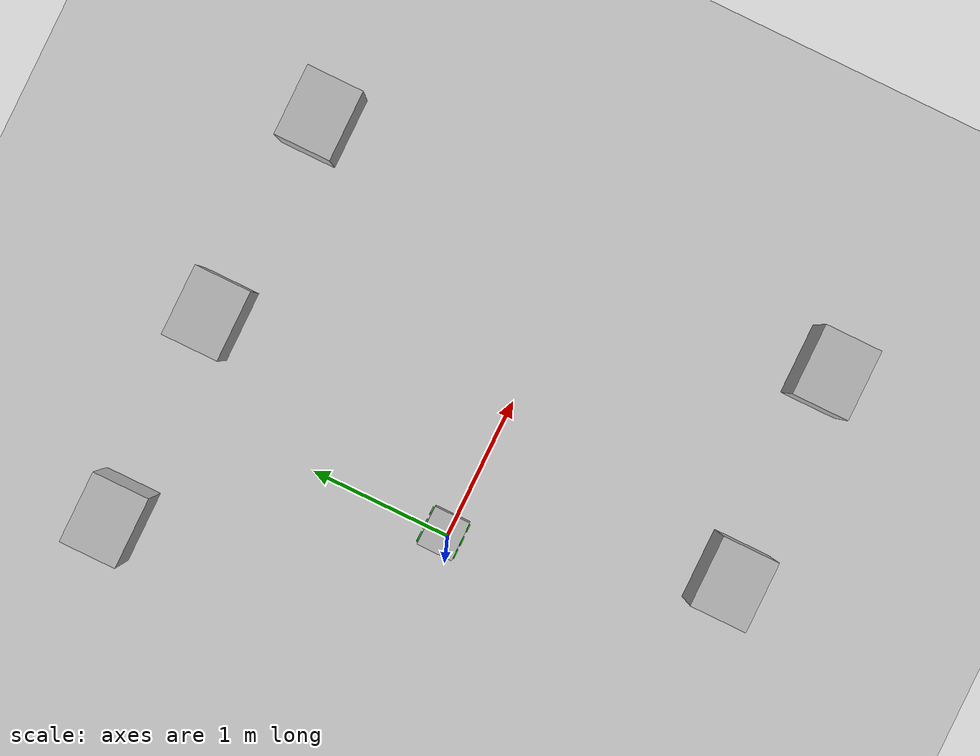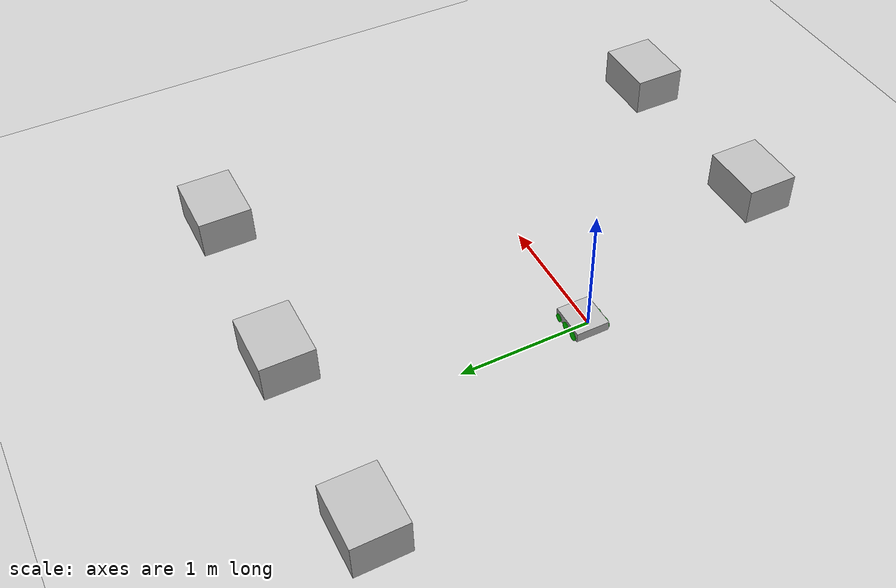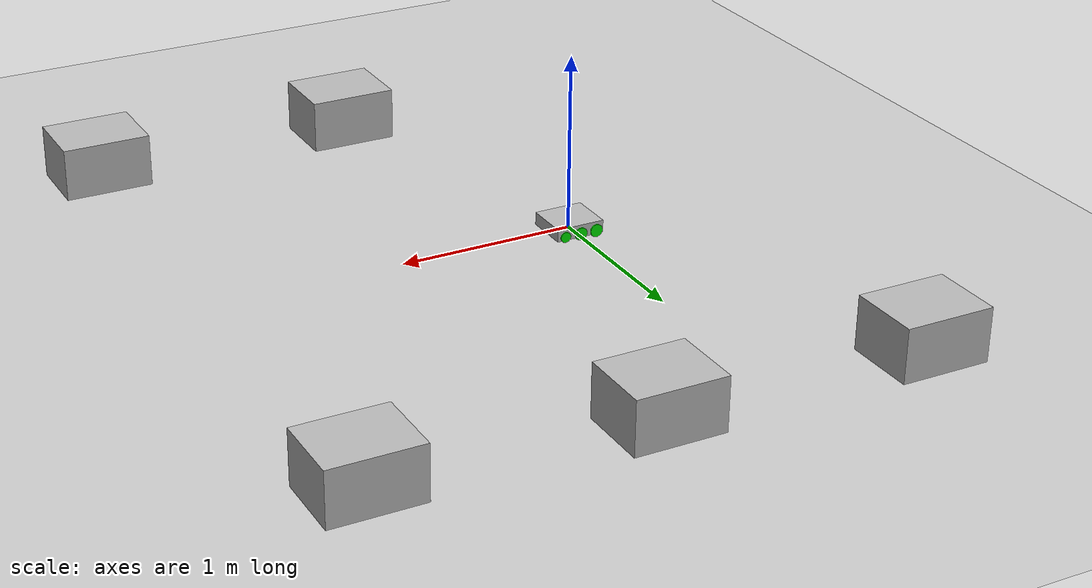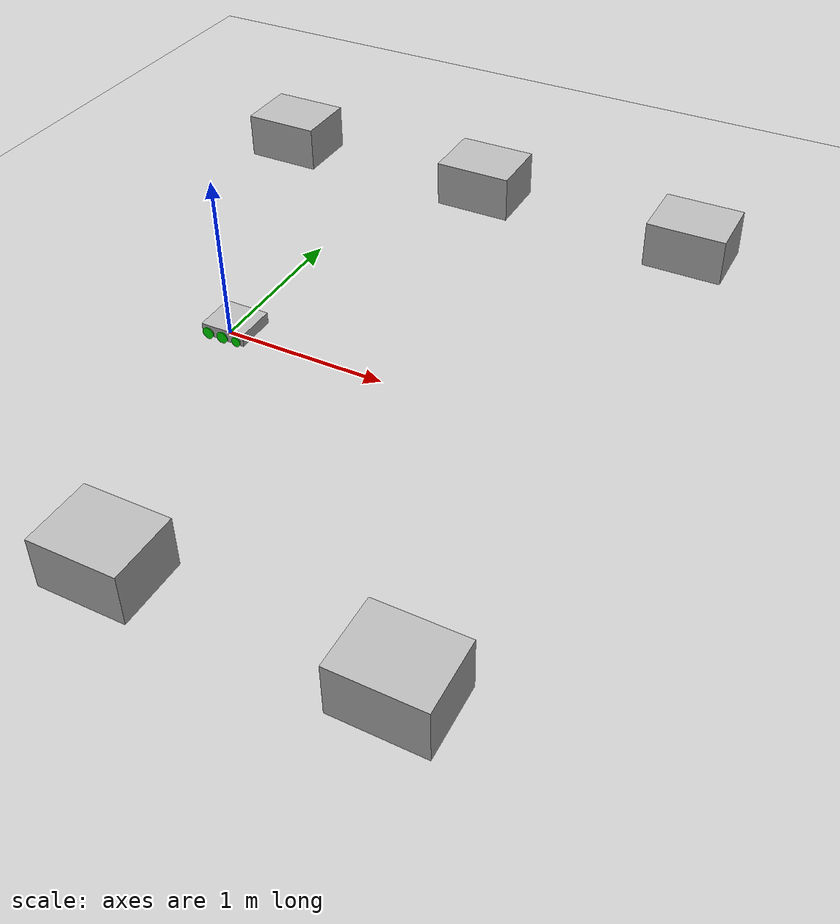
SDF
<sdf version="1.7">
 <world name="default">
  <light name="sun" type="directional">
   <pose>0 0 10 0 -0 0</pose>
   <diffuse>0.8 0.8 0.8 1</diffuse>
   <specular>0.2 0.2 0.2 1</specular>
   <attenuation>
    <range>1000</range>
    <constant>0.9</constant>
    <linear>0.01</linear>
    <quadratic>0.001</quadratic>
   </attenuation>
   <direction>-0.5 0.1 -0.9</direction>
   <spot><inner_angle>0</inner_angle><outer_angle>0</outer_angle><falloff>0</falloff></spot>
  </light>
  <model name="ground_plane">
   <static>1</static>
   <link name="link">
    <collision name="collision">
     <geometry><plane><normal>0 0 1</normal><size>100 100</size></plane></geometry>
     <surface>
      <contact><collide_bitmask>65535</collide_bitmask></contact>
      <friction><ode><mu>100</mu><mu2>50</mu2></ode></friction>
     </surface>
    </collision>
    <visual name="visual">
     <cast_shadows>0</cast_shadows>
     <geometry><plane><normal>0 0 1</normal><size>100 100</size></plane></geometry>
     <material>
      <script><uri>file://media/materials/scripts/gazebo.material</uri><name>Gazebo/Grey</name></script>
     </material>
    </visual>
   </link>
  </model>
  <gravity>0 0 -9.8</gravity>
  <magnetic_field>6e-06 2.3e-05 -4.2e-05</magnetic_field>
  <atmosphere type="adiabatic"/>
  <physics type="ode">
   <max_step_size>0.001</max_step_size>
   <real_time_factor>1</real_time_factor>
   <real_time_update_rate>1000</real_time_update_rate>
  </physics>
  <scene><ambient>0.4 0.4 0.4 1</ambient><background>0.7 0.7 0.7 1</background><shadows>1</shadows></scene>
  <spherical_coordinates>
   <surface_model>EARTH_WGS84</surface_model>
   <latitude_deg>0</latitude_deg>
   <longitude_deg>0</longitude_deg>
   <elevation>0</elevation>
   <heading_deg>0</heading_deg>
  </spherical_coordinates>
  <model name="cardboard_box">
   <pose>2.13729 1.9572 0.149 0 -0 0</pose>
   <link name="link">
    <inertial>
     <mass>2</mass>
     <inertia>
      <ixx>0.0416667</ixx>
      <ixy>0</ixy>
      <ixz>0</ixz>
      <iyy>0.0566667</iyy>
      <iyz>0</iyz>
      <izz>0.0683333</izz>
     </inertia>
    </inertial>
    <collision name="collision">
     <geometry><box><size>0.5 0.4 0.3</size></box></geometry>
     <surface>
      <friction><ode><mu>1</mu><mu2>1</mu2></ode></friction>
      <contact><ode><kp>1e+07</kp><kd>1</kd><min_depth>0.001</min_depth><max_vel>0.1</max_vel></ode></contact>
     </surface>
    </collision>
    <visual name="visual">
     <pose>0 0 -0.15 0 -0 0</pose>
     <geometry>
      <mesh><uri>model://cardboard_box/meshes/cardboard_box.dae</uri><scale>1.25932 1.00745 0.755591</scale></mesh>
     </geometry>
    </visual>
   </link>
  </model>
  <model name="cardboard_box_clone">
   <pose>2.08974 -1.7852 0.149 0 -0 0</pose>
   <link name="link">
    <inertial>
     <mass>2</mass>
     <inertia>
      <ixx>0.0416667</ixx>
      <ixy>0</ixy>
      <ixz>0</ixz>
      <iyy>0.0566667</iyy>
      <iyz>0</iyz>
      <izz>0.0683333</izz>
     </inertia>
    </inertial>
    <collision name="collision">
     <geometry><box><size>0.5 0.4 0.3</size></box></geometry>
     <surface>
      <friction><ode><mu>1</mu><mu2>1</mu2></ode></friction>
      <contact><ode><kp>1e+07</kp><kd>1</kd><min_depth>0.001</min_depth><max_vel>0.1</max_vel></ode></contact>
     </surface>
    </collision>
    <visual name="visual">
     <pose>0 0 -0.15 0 -0 0</pose>
     <geometry>
      <mesh><uri>model://cardboard_box/meshes/cardboard_box.dae</uri><scale>1.25932 1.00745 0.755591</scale></mesh>
     </geometry>
    </visual>
   </link>
  </model>
  <model name="cardboard_box_clone_0">
   <pose>0.571619 -1.78743 0.149 0 -0 0</pose>
   <link name="link">
    <inertial>
     <mass>2</mass>
     <inertia>
      <ixx>0.0416667</ixx>
      <ixy>0</ixy>
      <ixz>0</ixz>
      <iyy>0.0566667</iyy>
      <iyz>0</iyz>
      <izz>0.0683333</izz>
     </inertia>
    </inertial>
    <collision name="collision">
     <geometry><box><size>0.5 0.4 0.3</size></box></geometry>
     <surface>
      <friction><ode><mu>1</mu><mu2>1</mu2></ode></friction>
      <contact><ode><kp>1e+07</kp><kd>1</kd><min_depth>0.001</min_depth><max_vel>0.1</max_vel></ode></contact>
     </surface>
    </collision>
    <visual name="visual">
     <pose>0 0 -0.15 0 -0 0</pose>
     <geometry>
      <mesh><uri>model://cardboard_box/meshes/cardboard_box.dae</uri><scale>1.25932 1.00745 0.755591</scale></mesh>
     </geometry>
    </visual>
   </link>
  </model>
  <model name="cardboard_box_clone_1">
   <pose>0.658976 2.04736 0.149 0 -0 0</pose>
   <link name="link">
    <inertial>
     <mass>2</mass>
     <inertia>
      <ixx>0.0416667</ixx>
      <ixy>0</ixy>
      <ixz>0</ixz>
      <iyy>0.0566667</iyy>
      <iyz>0</iyz>
      <izz>0.0683333</izz>
     </inertia>
    </inertial>
    <collision name="collision">
     <geometry><box><size>0.5 0.4 0.3</size></box></geometry>
     <surface>
      <friction><ode><mu>1</mu><mu2>1</mu2></ode></friction>
      <contact><ode><kp>1e+07</kp><kd>1</kd><min_depth>0.001</min_depth><max_vel>0.1</max_vel></ode></contact>
     </surface>
    </collision>
    <visual name="visual">
     <pose>0 0 -0.15 0 -0 0</pose>
     <geometry>
      <mesh><uri>model://cardboard_box/meshes/cardboard_box.dae</uri><scale>1.25932 1.00745 0.755591</scale></mesh>
     </geometry>
    </visual>
   </link>
  </model>
  <model name="cardboard_box_clone_2">
   <pose>-0.831663 2.05622 0.149 0 -0 0</pose>
   <link name="link">
    <inertial>
     <mass>2</mass>
     <inertia>
      <ixx>0.0416667</ixx>
      <ixy>0</ixy>
      <ixz>0</ixz>
      <iyy>0.0566667</iyy>
      <iyz>0</iyz>
      <izz>0.0683333</izz>
     </inertia>
    </inertial>
    <collision name="collision">
     <geometry><box><size>0.5 0.4 0.3</size></box></geometry>
     <surface>
      <friction><ode><mu>1</mu><mu2>1</mu2></ode></friction>
      <contact><ode><kp>1e+07</kp><kd>1</kd><min_depth>0.001</min_depth><max_vel>0.1</max_vel></ode></contact>
     </surface>
    </collision>
    <visual name="visual">
     <pose>0 0 -0.15 0 -0 0</pose>
     <geometry>
      <mesh><uri>model://cardboard_box/meshes/cardboard_box.dae</uri><scale>1.25932 1.00745 0.755591</scale></mesh>
     </geometry>
    </visual>
   </link>
  </model>
  <model name="six_wheel_robot">
   <static>0</static>
   <plugin name="robot_control" filename="libsix_wheel_robot_drivetrain.so"/>
   <link name="chassis">
    <pose>0 0 0.05 0 -0 0</pose>
    <inertial>
     <mass>1.5</mass>
     <pose>-0.05 0 0 0 -0 0</pose>
     <inertia><ixx>20</ixx><ixy>0</ixy><ixz>0</ixz><iyy>20</iyy><iyz>0</iyz><izz>0.05</izz></inertia>
    </inertial>
    <collision name="collision"><geometry><box><size>0.2794 0.254 0.073</size></box></geometry></collision>
    <visual name="visual"><geometry><box><size>0.2794 0.254 0.073</size></box></geometry></visual>
   </link>
   <link name="left_back_wheel">
    <pose>-0.095 0.135 0.036 -0 1.5707 1.5707</pose>
    <inertial>
     <mass>0.028</mass>
     <inertia><ixx>0.01</ixx><ixy>0</ixy><ixz>0</ixz><iyy>0.01</iyy><iyz>0</iyz><izz>0.001</izz></inertia>
    </inertial>
    <collision name="collision">
     <geometry><cylinder><radius>0.0365125</radius><length>0.00635</length></cylinder></geometry>
    </collision>
    <visual name="visual">
     <geometry><cylinder><radius>0.0365125</radius><length>0.00635</length></cylinder></geometry>
     <material>
      <ambient>0 0.9 0 1</ambient>
      <diffuse>0 0.9 0 1</diffuse>
      <specular>0 0 0 0</specular>
      <emissive>0 0 0 1</emissive>
     </material>
    </visual>
   </link>
   <joint name="left_back_wheel_hinge" type="revolute">
    <pose>0 0 -0.03 0 -0 0</pose>
    <child>left_back_wheel</child>
    <parent>chassis</parent>
    <axis>
     <xyz expressed_in="__model__">0 1 0</xyz>
     <limit><lower>-1e+16</lower><upper>1e+16</upper></limit>
     <dynamics><spring_reference>0</spring_reference><spring_stiffness>0</spring_stiffness></dynamics>
    </axis>
   </joint>
   <link name="left_center_wheel">
    <pose>0 0.135 0.036 -0 1.5707 1.5707</pose>
    <inertial>
     <mass>0.028</mass>
     <inertia><ixx>0.01</ixx><ixy>0</ixy><ixz>0</ixz><iyy>0.01</iyy><iyz>0</iyz><izz>0.001</izz></inertia>
    </inertial>
    <collision name="collision">
     <geometry><cylinder><radius>0.0365125</radius><length>0.00635</length></cylinder></geometry>
    </collision>
    <visual name="visual">
     <geometry><cylinder><radius>0.0365125</radius><length>0.00635</length></cylinder></geometry>
     <material>
      <ambient>0 0.9 0 1</ambient>
      <diffuse>0 0.9 0 1</diffuse>
      <specular>0 0 0 0</specular>
      <emissive>0 0 0 1</emissive>
     </material>
    </visual>
   </link>
   <joint name="left_center_wheel_hinge" type="revolute">
    <pose>0 0 -0.03 0 -0 0</pose>
    <child>left_center_wheel</child>
    <parent>chassis</parent>
    <axis>
     <xyz expressed_in="__model__">0 1 0</xyz>
     <limit><lower>-1e+16</lower><upper>1e+16</upper></limit>
     <dynamics><spring_reference>0</spring_reference><spring_stiffness>0</spring_stiffness></dynamics>
    </axis>
   </joint>
   <link name="left_front_wheel">
    <pose>0.095 0.135 0.036 -0 1.5707 1.5707</pose>
    <inertial>
     <mass>0.028</mass>
     <inertia><ixx>0.01</ixx><ixy>0</ixy><ixz>0</ixz><iyy>0.01</iyy><iyz>0</iyz><izz>0.001</izz></inertia>
    </inertial>
    <collision name="collision">
     <geometry><cylinder><radius>0.03</radius><length>0.00635</length></cylinder></geometry>
    </collision>
    <visual name="visual">
     <geometry><cylinder><radius>0.03</radius><length>0.00635</length></cylinder></geometry>
     <material>
      <ambient>0 0.9 0 1</ambient>
      <diffuse>0 0.9 0 1</diffuse>
      <specular>0 0 0 0</specular>
      <emissive>0 0 0 1</emissive>
     </material>
    </visual>
   </link>
   <joint name="left_front_wheel_hinge" type="revolute">
    <pose>0 0 -0.03 0 -0 0</pose>
    <child>left_front_wheel</child>
    <parent>chassis</parent>
    <axis>
     <xyz expressed_in="__model__">0 1 0</xyz>
     <limit><lower>-1e+16</lower><upper>1e+16</upper></limit>
     <dynamics><spring_reference>0</spring_reference><spring_stiffness>0</spring_stiffness></dynamics>
    </axis>
   </joint>
   <link name="right_back_wheel">
    <pose>-0.095 -0.135 0.036 -0 1.5707 1.5707</pose>
    <inertial>
     <mass>0.028</mass>
     <inertia><ixx>0.01</ixx><ixy>0</ixy><ixz>0</ixz><iyy>0.01</iyy><iyz>0</iyz><izz>0.001</izz></inertia>
    </inertial>
    <collision name="collision">
     <geometry><cylinder><radius>0.0365125</radius><length>0.00635</length></cylinder></geometry>
    </collision>
    <visual name="visual">
     <geometry><cylinder><radius>0.0365125</radius><length>0.00635</length></cylinder></geometry>
     <material>
      <ambient>0 0.9 0 1</ambient>
      <diffuse>0 0.9 0 1</diffuse>
      <specular>0 0 0 0</specular>
      <emissive>0 0 0 1</emissive>
     </material>
    </visual>
   </link>
   <joint name="right_back_wheel_hinge" type="revolute">
    <pose>0 0 0.03 0 -0 0</pose>
    <child>right_back_wheel</child>
    <parent>chassis</parent>
    <axis>
     <xyz expressed_in="__model__">0 1 0</xyz>
     <limit><lower>-1e+16</lower><upper>1e+16</upper></limit>
     <dynamics><spring_reference>0</spring_reference><spring_stiffness>0</spring_stiffness></dynamics>
    </axis>
   </joint>
   <link name="right_center_wheel">
    <pose>0 -0.135 0.036 -0 1.5707 1.5707</pose>
    <inertial>
     <mass>0.028</mass>
     <inertia><ixx>0.01</ixx><ixy>0</ixy><ixz>0</ixz><iyy>0.01</iyy><iyz>0</iyz><izz>0.001</izz></inertia>
    </inertial>
    <collision name="collision">
     <geometry><cylinder><radius>0.0365125</radius><length>0.00635</length></cylinder></geometry>
    </collision>
    <visual name="visual">
     <geometry><cylinder><radius>0.0365125</radius><length>0.00635</length></cylinder></geometry>
     <material>
      <ambient>0 0.9 0 1</ambient>
      <diffuse>0 0.9 0 1</diffuse>
      <specular>0 0 0 0</specular>
      <emissive>0 0 0 1</emissive>
     </material>
    </visual>
   </link>
   <joint name="right_center_wheel_hinge" type="revolute">
    <pose>0 0 0.03 0 -0 0</pose>
    <child>right_center_wheel</child>
    <parent>chassis</parent>
    <axis>
     <xyz expressed_in="__model__">0 1 0</xyz>
     <limit><lower>-1e+16</lower><upper>1e+16</upper></limit>
     <dynamics><spring_reference>0</spring_reference><spring_stiffness>0</spring_stiffness></dynamics>
    </axis>
   </joint>
   <link name="right_front_wheel">
    <pose>0.095 -0.135 0.036 -0 1.5707 1.5707</pose>
    <inertial>
     <mass>0.028</mass>
     <inertia><ixx>0.01</ixx><ixy>0</ixy><ixz>0</ixz><iyy>0.01</iyy><iyz>0</iyz><izz>0.001</izz></inertia>
    </inertial>
    <collision name="collision">
     <geometry><cylinder><radius>0.03</radius><length>0.00635</length></cylinder></geometry>
    </collision>
    <visual name="visual">
     <geometry><cylinder><radius>0.03</radius><length>0.00635</length></cylinder></geometry>
     <material>
      <ambient>0 0.9 0 1</ambient>
      <diffuse>0 0.9 0 1</diffuse>
      <specular>0 0 0 0</specular>
      <emissive>0 0 0 1</emissive>
     </material>
    </visual>
   </link>
   <joint name="right_front_wheel_hinge" type="revolute">
    <pose>0 0 0.03 0 -0 0</pose>
    <child>right_front_wheel</child>
    <parent>chassis</parent>
    <axis>
     <xyz expressed_in="__model__">0 1 0</xyz>
     <limit><lower>-1e+16</lower><upper>1e+16</upper></limit>
     <dynamics><spring_reference>0</spring_reference><spring_stiffness>0</spring_stiffness></dynamics>
    </axis>
   </joint>
   <pose>0.01525 0.037957 0.000515 5e-06 -6.1e-05 0.000734</pose>
  </model>
 </world>
</sdf>
